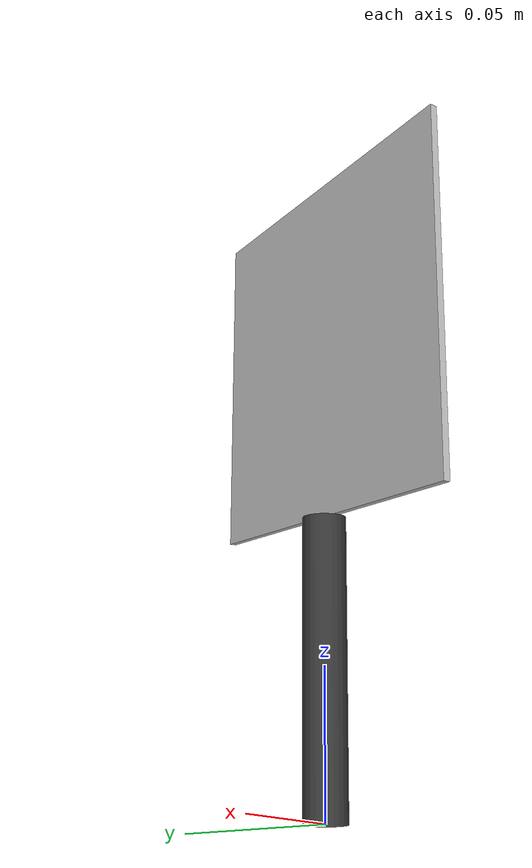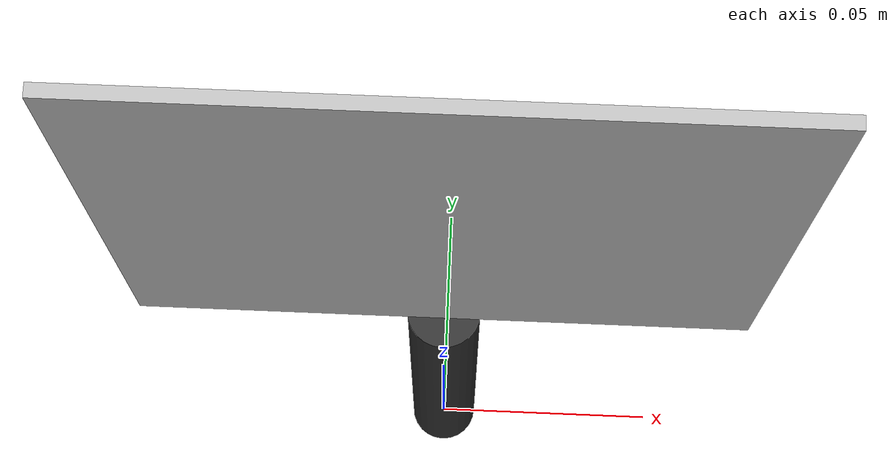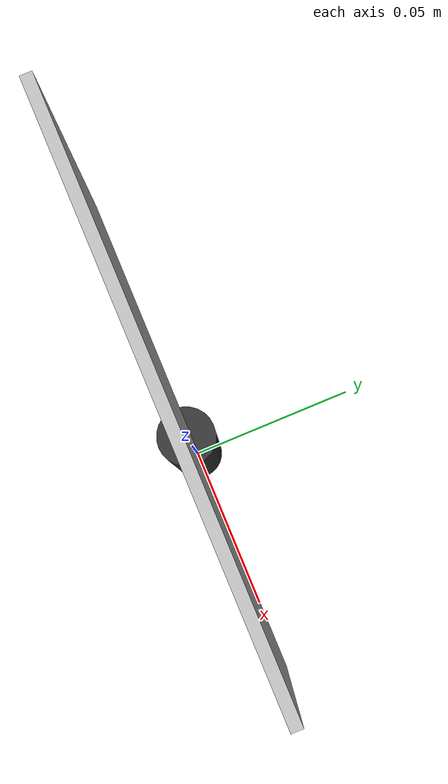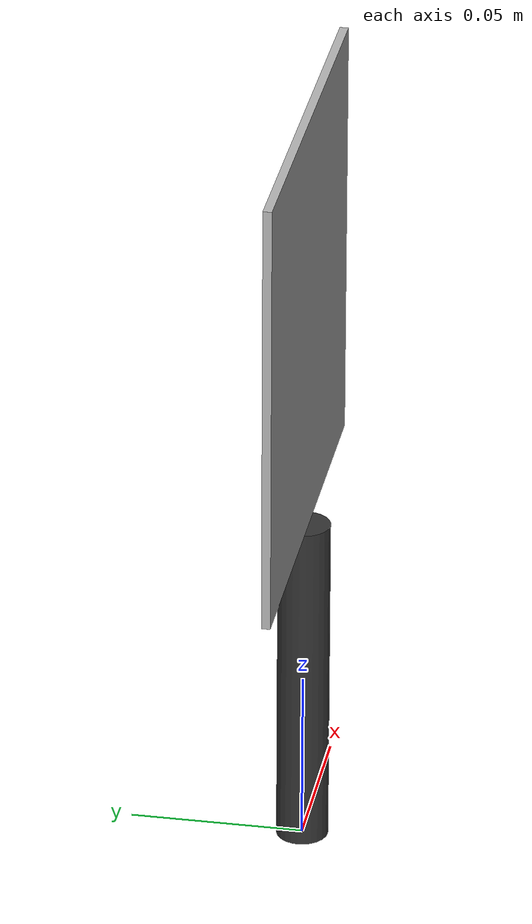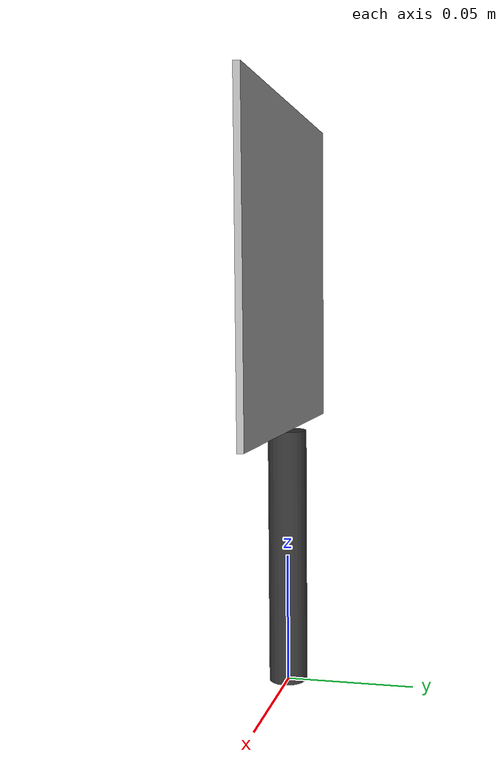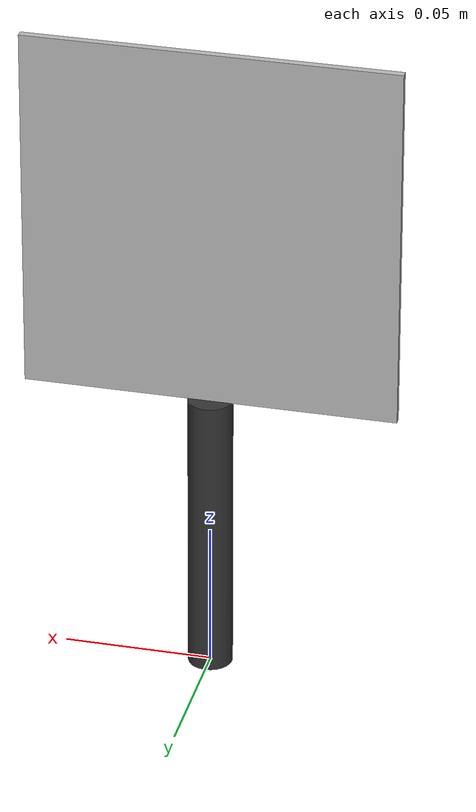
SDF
<?xml version="1.0"?>
<sdf version="1.6">
  <model name="speed_bump_sign">
    <static>true</static>

    <link name="sign_link">
      <!-- 기둥 -->
      <visual name="pole_visual">
        <pose>0 0 0.05 0 0 0</pose>
        <geometry>
          <cylinder>
            <radius>0.0075</radius>
            <length>0.1</length>
          </cylinder>
        </geometry>
        <material>
          <ambient>0.2 0.2 0.2 1</ambient>
          <diffuse>0.2 0.2 0.2 1</diffuse>
        </material>
      </visual>

      <!-- 표지판 본체 -->
      <visual name="sign_visual">
        <pose>0 0 0.1625 0 0 0</pose>
        <geometry>
          <box>
            <size>0.125 0.0025 0.125</size>
          </box>
        </geometry>
        <material>
          <script>
            <uri>model://speed_bump_sign/materials/scripts</uri>
            <uri>model://speed_bump_sign/materials/textures</uri>
            <name>Gazebo/speed_bump_sign</name>
          </script>
        </material>
      </visual>
    </link>
  </model>
</sdf>
